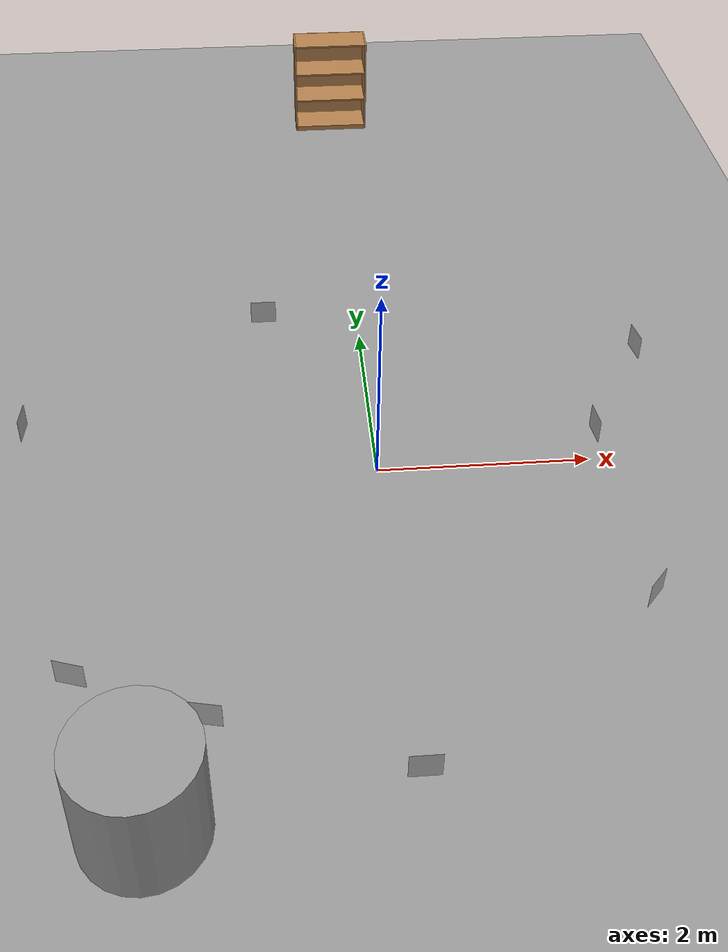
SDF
<sdf version="1.4">
 <world name="default">
  <light name="sun" type="directional">
   <pose>0 0 10 0 -0 0</pose>
   <diffuse>0.8 0.8 0.8 1</diffuse>
   <specular>0.2 0.2 0.2 1</specular>
   <attenuation>
    <range>1000</range>
    <constant>0.9</constant>
    <linear>0.01</linear>
    <quadratic>0.001</quadratic>
   </attenuation>
   <direction>0.5 0.1 -0.9</direction>
  </light>
  <scene><ambient>0.4 0.4 0.4 1</ambient><background>0.7 0.7 0.7 1</background><shadows>1</shadows></scene>
  <physics type="ode">
   <max_step_size>0.01</max_step_size>
   <real_time_factor>1</real_time_factor>
   <real_time_update_rate>100</real_time_update_rate>
   <gravity>0 0 -9.8</gravity>
  </physics>
  <model name="bookshelf">
   <static>1</static>
   <link name="link">
    <inertial><mass>1</mass></inertial>
    <collision name="back">
     <pose>0 0.005 0.6 0 -0 0</pose>
     <geometry><box><size>0.9 0.01 1.2</size></box></geometry>
    </collision>
    <visual name="visual1">
     <pose>0 0.005 0.6 0 -0 0</pose>
     <geometry><box><size>0.9 0.01 1.2</size></box></geometry>
     <material>
      <script><uri>file://media/materials/scripts/gazebo.material</uri><name>Gazebo/Wood</name></script>
     </material>
    </visual>
    <collision name="left_side">
     <pose>0.45 -0.195 0.6 0 -0 0</pose>
     <geometry><box><size>0.02 0.4 1.2</size></box></geometry>
    </collision>
    <visual name="visual2">
     <pose>0.45 -0.195 0.6 0 -0 0</pose>
     <geometry><box><size>0.02 0.4 1.2</size></box></geometry>
     <material>
      <script><uri>file://media/materials/scripts/gazebo.material</uri><name>Gazebo/Wood</name></script>
     </material>
    </visual>
    <collision name="right_side">
     <pose>-0.45 -0.195 0.6 0 -0 0</pose>
     <geometry><box><size>0.02 0.4 1.2</size></box></geometry>
    </collision>
    <visual name="visual3">
     <pose>-0.45 -0.195 0.6 0 -0 0</pose>
     <geometry><box><size>0.02 0.4 1.2</size></box></geometry>
     <material>
      <script><uri>file://media/materials/scripts/gazebo.material</uri><name>Gazebo/Wood</name></script>
     </material>
    </visual>
    <collision name="bottom">
     <pose>0 -0.195 0.03 0 -0 0</pose>
     <geometry><box><size>0.88 0.4 0.06</size></box></geometry>
    </collision>
    <visual name="visual4">
     <pose>0 -0.195 0.03 0 -0 0</pose>
     <geometry><box><size>0.88 0.4 0.06</size></box></geometry>
     <material>
      <script><uri>file://media/materials/scripts/gazebo.material</uri><name>Gazebo/Wood</name></script>
     </material>
    </visual>
    <collision name="top">
     <pose>0 -0.195 1.19 0 -0 0</pose>
     <geometry><box><size>0.88 0.4 0.02</size></box></geometry>
    </collision>
    <visual name="visual5">
     <pose>0 -0.195 1.19 0 -0 0</pose>
     <geometry><box><size>0.88 0.4 0.02</size></box></geometry>
     <material>
      <script><uri>file://media/materials/scripts/gazebo.material</uri><name>Gazebo/Wood</name></script>
     </material>
    </visual>
    <collision name="low_shelf">
     <pose>0 -0.195 0.43 0 -0 0</pose>
     <geometry><box><size>0.88 0.4 0.02</size></box></geometry>
    </collision>
    <visual name="visual6">
     <pose>0 -0.195 0.43 0 -0 0</pose>
     <geometry><box><size>0.88 0.4 0.02</size></box></geometry>
     <material>
      <script><uri>file://media/materials/scripts/gazebo.material</uri><name>Gazebo/Wood</name></script>
     </material>
    </visual>
    <collision name="high_shelf">
     <pose>0 -0.195 0.8 0 -0 0</pose>
     <geometry><box><size>0.88 0.4 0.02</size></box></geometry>
    </collision>
    <visual name="visual7">
     <pose>0 -0.195 0.8 0 -0 0</pose>
     <geometry><box><size>0.88 0.4 0.02</size></box></geometry>
     <material>
      <script><uri>file://media/materials/scripts/gazebo.material</uri><name>Gazebo/Wood</name></script>
     </material>
    </visual>
    <velocity_decay><linear>0</linear><angular>0</angular></velocity_decay>
   </link>
   <pose>0 6.84398 0 0 -0 0</pose>
  </model>
  <model name="ground_plane_0">
   <static>1</static>
   <link name="link">
    <collision name="collision">
     <geometry><plane><normal>0 0 1</normal><size>100 100</size></plane></geometry>
     <surface><friction><ode><mu>100</mu><mu2>50</mu2></ode></friction></surface>
    </collision>
    <visual name="visual">
     <cast_shadows>0</cast_shadows>
     <geometry><plane><normal>0 0 1</normal><size>100 100</size></plane></geometry>
     <material>
      <script><uri>file://media/materials/scripts/gazebo.material</uri><name>Gazebo/Grey</name></script>
     </material>
    </visual>
    <velocity_decay><linear>0</linear><angular>0</angular></velocity_decay>
   </link>
   <pose>0.497681 0 0 0 -0 0</pose>
  </model>
  <model name="unit_cylinder_1">
   <pose>-2 -3.4888 0.49912 -0 -0 -0</pose>
   <link name="link">
    <inertial>
     <mass>1</mass>
     <inertia><ixx>1</ixx><ixy>0</ixy><ixz>0</ixz><iyy>1</iyy><iyz>0</iyz><izz>1</izz></inertia>
    </inertial>
    <collision name="collision">
     <geometry><cylinder><radius>0.5</radius><length>1</length></cylinder></geometry>
    </collision>
    <visual name="visual">
     <geometry><cylinder><radius>0.5</radius><length>1</length></cylinder></geometry>
     <material>
      <script><uri>file://media/materials/scripts/gazebo.material</uri><name>Gazebo/Grey</name></script>
     </material>
    </visual>
    <velocity_decay><linear>0</linear><angular>0</angular></velocity_decay>
   </link>
   <static>0</static>
  </model>
  <spherical_coordinates>
   <surface_model>EARTH_WGS84</surface_model>
   <latitude_deg>0</latitude_deg>
   <longitude_deg>0</longitude_deg>
   <elevation>0</elevation>
   <heading_deg>0</heading_deg>
  </spherical_coordinates>
  <model name="my_model">
   <pose>-2.56096 -2.48274 0.5 0 0 -0.306393</pose>
   <static>1</static>
   <link name="link">
    <inertial>
     <mass>1</mass>
     <inertia><ixx>0.083</ixx><ixy>0</ixy><ixz>0</ixz><iyy>0.083</iyy><iyz>0</iyz><izz>0.083</izz></inertia>
    </inertial>
    <collision name="collision"><geometry><box><size>0.25 0.001 0.25</size></box></geometry></collision>
    <visual name="visual">
     <geometry><box><size>0.25 0.001 0.25</size></box></geometry>
     <material>
      <script>
       <uri>model://aruco_marker_0/materials/scripts</uri>
       <uri>model://aruco_marker_0/materials/textures</uri>
       <name>ar_marker_id0/Diffuse</name>
      </script>
     </material>
    </visual>
    <velocity_decay><linear>0</linear><angular>0</angular></velocity_decay>
   </link>
  </model>
  <model name="my_model_0">
   <pose>-1.54073 -2.90971 0.5 0 0 -0.203776</pose>
   <static>1</static>
   <link name="link">
    <inertial>
     <mass>1</mass>
     <inertia><ixx>0.083</ixx><ixy>0</ixy><ixz>0</ixz><iyy>0.083</iyy><iyz>0</iyz><izz>0.083</izz></inertia>
    </inertial>
    <collision name="collision"><geometry><box><size>0.25 0.001 0.25</size></box></geometry></collision>
    <visual name="visual">
     <geometry><box><size>0.25 0.001 0.25</size></box></geometry>
     <material>
      <script>
       <uri>model://aruco_marker_1/materials/scripts</uri>
       <uri>model://aruco_marker_1/materials/textures</uri>
       <name>ar_marker_id1/Diffuse</name>
      </script>
     </material>
    </visual>
    <velocity_decay><linear>0</linear><angular>0</angular></velocity_decay>
   </link>
  </model>
  <model name="my_model_1">
   <pose>0 -3.4441 0.5 0 -0 0</pose>
   <static>1</static>
   <link name="link">
    <inertial>
     <mass>1</mass>
     <inertia><ixx>0.083</ixx><ixy>0</ixy><ixz>0</ixz><iyy>0.083</iyy><iyz>0</iyz><izz>0.083</izz></inertia>
    </inertial>
    <collision name="collision"><geometry><box><size>0.25 0.001 0.25</size></box></geometry></collision>
    <visual name="visual">
     <geometry><box><size>0.25 0.001 0.25</size></box></geometry>
     <material>
      <script>
       <uri>model://aruco_marker_2/materials/scripts</uri>
       <uri>model://aruco_marker_2/materials/textures</uri>
       <name>ar_marker_id2/Diffuse</name>
      </script>
     </material>
    </visual>
    <velocity_decay><linear>0</linear><angular>0</angular></velocity_decay>
   </link>
  </model>
  <model name="my_model_2">
   <pose>-3.24837 0.337719 0.5 0 -0 1.46164</pose>
   <static>1</static>
   <link name="link">
    <inertial>
     <mass>1</mass>
     <inertia><ixx>0.083</ixx><ixy>0</ixy><ixz>0</ixz><iyy>0.083</iyy><iyz>0</iyz><izz>0.083</izz></inertia>
    </inertial>
    <collision name="collision"><geometry><box><size>0.25 0.001 0.25</size></box></geometry></collision>
    <visual name="visual">
     <geometry><box><size>0.25 0.001 0.25</size></box></geometry>
     <material>
      <script>
       <uri>model://aruco_marker_3/materials/scripts</uri>
       <uri>model://aruco_marker_3/materials/textures</uri>
       <name>ar_marker_id3/Diffuse</name>
      </script>
     </material>
    </visual>
    <velocity_decay><linear>0</linear><angular>0</angular></velocity_decay>
   </link>
  </model>
  <model name="my_model_3">
   <pose>2.04163 -1.99288 0.5 0 -0 0.821707</pose>
   <static>1</static>
   <link name="link">
    <inertial>
     <mass>1</mass>
     <inertia><ixx>0.083</ixx><ixy>0</ixy><ixz>0</ixz><iyy>0.083</iyy><iyz>0</iyz><izz>0.083</izz></inertia>
    </inertial>
    <collision name="collision"><geometry><box><size>0.25 0.001 0.25</size></box></geometry></collision>
    <visual name="visual">
     <geometry><box><size>0.25 0.001 0.25</size></box></geometry>
     <material>
      <script>
       <uri>model://aruco_marker_4/materials/scripts</uri>
       <uri>model://aruco_marker_4/materials/textures</uri>
       <name>ar_marker_id4/Diffuse</name>
      </script>
     </material>
    </visual>
    <velocity_decay><linear>0</linear><angular>0</angular></velocity_decay>
   </link>
  </model>
  <model name="my_model_4">
   <pose>1.99113 -0.052208 0.5 0 -0 1.6704</pose>
   <static>1</static>
   <link name="link">
    <inertial>
     <mass>1</mass>
     <inertia><ixx>0.083</ixx><ixy>0</ixy><ixz>0</ixz><iyy>0.083</iyy><iyz>0</iyz><izz>0.083</izz></inertia>
    </inertial>
    <collision name="collision"><geometry><box><size>0.25 0.001 0.25</size></box></geometry></collision>
    <visual name="visual">
     <geometry><box><size>0.25 0.001 0.25</size></box></geometry>
     <material>
      <script>
       <uri>model://aruco_marker_5/materials/scripts</uri>
       <uri>model://aruco_marker_5/materials/textures</uri>
       <name>ar_marker_id5/Diffuse</name>
      </script>
     </material>
    </visual>
    <velocity_decay><linear>0</linear><angular>0</angular></velocity_decay>
   </link>
  </model>
  <model name="my_model_5">
   <pose>2.65882 1.10338 0.5 0 0 -1.4084</pose>
   <static>1</static>
   <link name="link">
    <inertial>
     <mass>1</mass>
     <inertia><ixx>0.083</ixx><ixy>0</ixy><ixz>0</ixz><iyy>0.083</iyy><iyz>0</iyz><izz>0.083</izz></inertia>
    </inertial>
    <collision name="collision"><geometry><box><size>0.25 0.001 0.25</size></box></geometry></collision>
    <visual name="visual">
     <geometry><box><size>0.25 0.001 0.25</size></box></geometry>
     <material>
      <script>
       <uri>model://aruco_marker_6/materials/scripts</uri>
       <uri>model://aruco_marker_6/materials/textures</uri>
       <name>ar_marker_id6/Diffuse</name>
      </script>
     </material>
    </visual>
    <velocity_decay><linear>0</linear><angular>0</angular></velocity_decay>
   </link>
  </model>
  <model name="my_model_6">
   <pose>-1 1.85424 0.5 0 -0 0</pose>
   <static>1</static>
   <link name="link">
    <inertial>
     <mass>1</mass>
     <inertia><ixx>0.083</ixx><ixy>0</ixy><ixz>0</ixz><iyy>0.083</iyy><iyz>0</iyz><izz>0.083</izz></inertia>
    </inertial>
    <collision name="collision"><geometry><box><size>0.25 0.001 0.25</size></box></geometry></collision>
    <visual name="visual">
     <geometry><box><size>0.25 0.001 0.25</size></box></geometry>
     <material>
      <script>
       <uri>model://aruco_marker_7/materials/scripts</uri>
       <uri>model://aruco_marker_7/materials/textures</uri>
       <name>ar_marker_id7/Diffuse</name>
      </script>
     </material>
    </visual>
    <velocity_decay><linear>0</linear><angular>0</angular></velocity_decay>
   </link>
  </model>
 </world>
</sdf>
